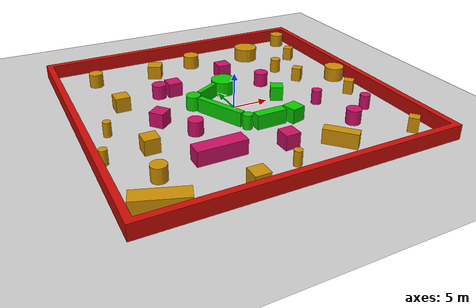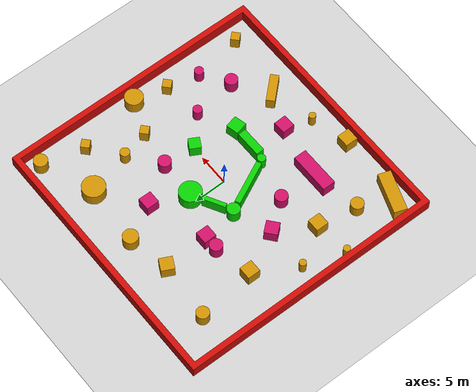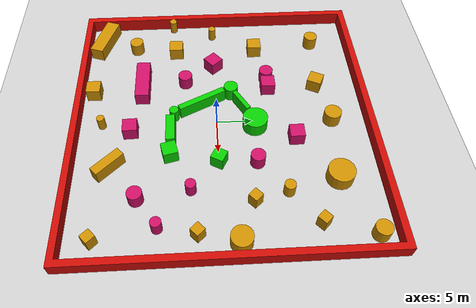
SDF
<sdf version='1.10'>
  <world name='empty'>
    <physics type='ode'>
      <real_time_update_rate>1000</real_time_update_rate>
      <max_step_size>0.001</max_step_size>
      <real_time_factor>1</real_time_factor>
      <ode>
        <solver>
          <type>quick</type>
          <iters>150</iters>
          <precon_iters>0</precon_iters>
          <sor>1.3999999999999999</sor>
          <use_dynamic_moi_rescaling>true</use_dynamic_moi_rescaling>
        </solver>
        <constraints>
          <cfm>1.0000000000000001e-05</cfm>
          <erp>0.20000000000000001</erp>
          <contact_max_correcting_vel>2000</contact_max_correcting_vel>
          <contact_surface_layer>0.01</contact_surface_layer>
        </constraints>
      </ode>
    </physics>
    <plugin name='gz::sim::systems::Physics' filename='gz-sim-physics-system'/>
    <plugin name='gz::sim::systems::UserCommands' filename='gz-sim-user-commands-system'/>
    <plugin name='gz::sim::systems::SceneBroadcaster' filename='gz-sim-scene-broadcaster-system'/>
    <plugin name='gz::sim::systems::Sensors' filename='gz-sim-sensors-system'>
      <render_engine>ogre2</render_engine>
    </plugin>
    <plugin name='gz::sim::systems::Imu' filename='gz-sim-imu-system'/>
    <plugin name='gz::sim::systems::NavSat' filename='gz-sim-navsat-system'/>
    <gravity>0 0 -9.8000000000000007</gravity>
    <magnetic_field>5.5644999999999998e-06 2.2875799999999999e-05 -4.2388400000000002e-05</magnetic_field>
    <atmosphere type='adiabatic'/>
    <scene>
      <ambient>0.400000006 0.400000006 0.400000006 1</ambient>
      <background>0.699999988 0.699999988 0.699999988 1</background>
      <shadows>true</shadows>
    </scene>
    <spherical_coordinates>
      <surface_model>EARTH_WGS84</surface_model>
      <latitude_deg>3</latitude_deg>
      <longitude_deg>101.5</longitude_deg>
      <elevation>50</elevation>
      <heading_deg>0</heading_deg>
    </spherical_coordinates>
    <model name='ground_plane'>
      <static>true</static>
      <link name='link'>
        <collision name='collision'>
          <geometry>
            <plane>
              <normal>0 0 1</normal>
              <size>100 100</size>
            </plane>
          </geometry>
          <surface>
            <friction>
              <ode/>
            </friction>
            <bounce/>
            <contact/>
          </surface>
        </collision>
        <visual name='visual'>
          <geometry>
            <plane>
              <normal>0 0 1</normal>
              <size>100 100</size>
            </plane>
          </geometry>
          <material>
            <ambient>0.800000012 0.800000012 0.800000012 1</ambient>
            <diffuse>0.800000012 0.800000012 0.800000012 1</diffuse>
            <specular>0.800000012 0.800000012 0.800000012 1</specular>
          </material>
        </visual>
        <pose>0 0 0 0 0 0</pose>
        <inertial>
          <pose>0 0 0 0 0 0</pose>
          <mass>1</mass>
          <inertia>
            <ixx>1</ixx>
            <ixy>0</ixy>
            <ixz>0</ixz>
            <iyy>1</iyy>
            <iyz>0</iyz>
            <izz>1</izz>
          </inertia>
        </inertial>
        <enable_wind>false</enable_wind>
      </link>
      <pose>0 0 0 0 0 0</pose>
      <self_collide>false</self_collide>
    </model>
    <model name='wavefront_map'>
      <link name='link'>
        <visual name='visual'>
          <geometry>
            <mesh>
              <uri>file:///home/kong/cart_nav_test/src/cart_nav_test/models/wavefront_map.dae</uri>
            </mesh>
          </geometry>
        </visual>
        <collision name='collision'>
          <geometry>
            <mesh>
              <uri>file:///home/kong/cart_nav_test/src/cart_nav_test/models/wavefront_map.dae</uri>
            </mesh>
          </geometry>
        </collision>
        <pose>0 0 0 0 0 0</pose>
        <inertial>
          <pose>0 0 0 0 0 0</pose>
          <mass>1</mass>
          <inertia>
            <ixx>1</ixx>
            <ixy>0</ixy>
            <ixz>0</ixz>
            <iyy>1</iyy>
            <iyz>0</iyz>
            <izz>1</izz>
          </inertia>
        </inertial>
        <enable_wind>false</enable_wind>
      </link>
      <pose>-9.3254371714218821e-08 3.2323478767121938e-08 -9.0900065721057837e-07 -1.3878679269416307e-08 -3.8962721672362845e-08 -5.4396007737039534e-12</pose>
      <static>true</static>
      <self_collide>false</self_collide>
    </model>
    <light name='sun' type='directional'>
      <pose>0 0 10 0 0 0</pose>
      <cast_shadows>true</cast_shadows>
      <intensity>1</intensity>
      <direction>-0.5 0.10000000000000001 -0.90000000000000002</direction>
      <diffuse>0.800000012 0.800000012 0.800000012 1</diffuse>
      <specular>0.200000003 0.200000003 0.200000003 1</specular>
      <attenuation>
        <range>1000</range>
        <linear>0.0099999997764825821</linear>
        <constant>0.89999997615814209</constant>
        <quadratic>0.0010000000474974513</quadratic>
      </attenuation>
      <spot>
        <inner_angle>0</inner_angle>
        <outer_angle>0</outer_angle>
        <falloff>0</falloff>
      </spot>
    </light>
  </world>
</sdf>
